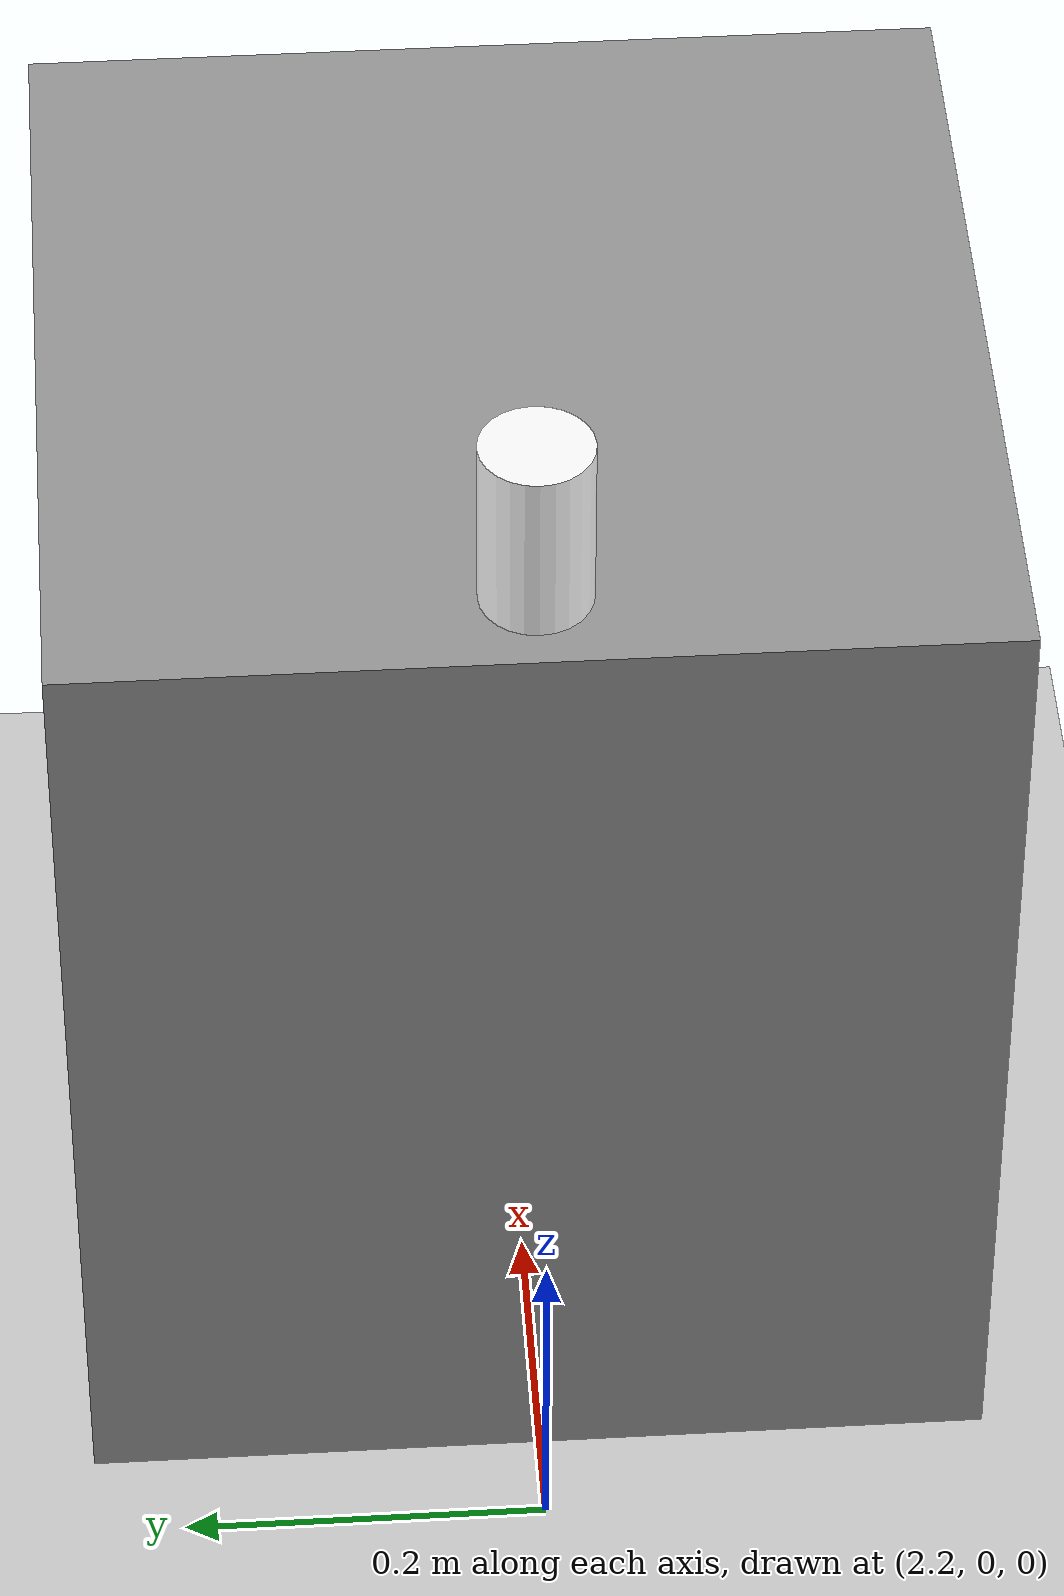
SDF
<?xml version="1.0"?>
<sdf version="1.4">
  <world name="default">
    <!-- A ground plane -->
    <include>
      <uri>model://ground_plane</uri>
    </include>
    <!-- A global light source -->
    <include>
      <uri>model://sun</uri>
    </include>
    <physics type="ode">
      <gravity>0.000000 0.000000 -9.810000</gravity>
      <ode>
        <solver>
          <type>quick</type>
          <iters>100</iters>
          <precon_iters>0</precon_iters>
          <sor>1.000000</sor>
        </solver>
        <constraints>
          <cfm>0.000000</cfm>
          <erp>0.500000</erp>
          <contact_max_correcting_vel>
          1000.000000</contact_max_correcting_vel>
          <contact_surface_layer>0.00000</contact_surface_layer>
        </constraints>
      </ode>
    </physics>
    <model name='static_box'>
      <link name='link'>
        <inertial>
          <mass>297.42</mass>
          <inertia>
            <ixx>15.4091</ixx>
            <ixy>0</ixy>
            <ixz>0</ixz>
            <iyy>14.9349</iyy>
            <iyz>0</iyz>
            <izz>12.1903</izz>
          </inertia>
          <pose frame=''>0 0 0 0 -0 0</pose>
        </inertial>
        <self_collide>0</self_collide>
        <enable_wind>0</enable_wind>
        <kinematic>0</kinematic>
        <pose frame=''>0 0 0 -0 -0 -0</pose>
        <gravity>1</gravity>
        <visual name='visual'>
          <geometry>
            <box>
              <size>0.5 0.5 0.6</size>
            </box>
          </geometry>
          <material>
            <script>
              <name>Gazebo/Grey</name>
              <uri>
              file://media/materials/scripts/gazebo.material</uri>
            </script>
            <shader type='vertex'>
              <normal_map>__default__</normal_map>
            </shader>
          </material>
          <pose frame=''>0 0 0 0 -0 0</pose>
          <transparency>0</transparency>
          <cast_shadows>1</cast_shadows>
        </visual>
        <collision name='collision'>
          <laser_retro>0</laser_retro>
          <max_contacts>10</max_contacts>
          <pose frame=''>0 0 0 0 -0 0</pose>
          <geometry>
            <box>
              <size>0.5 0.5 0.6</size>
            </box>
          </geometry>
          <surface>
            <friction>
              <ode>
                <mu>1</mu>
                <mu2>1</mu2>
                <fdir1>0 0 0</fdir1>
                <slip1>0</slip1>
                <slip2>0</slip2>
              </ode>
              <torsional>
                <coefficient>1</coefficient>
                <patch_radius>0</patch_radius>
                <surface_radius>0</surface_radius>
                <use_patch_radius>1</use_patch_radius>
                <ode>
                  <slip>0</slip>
                </ode>
              </torsional>
            </friction>
            <bounce>
              <restitution_coefficient>0</restitution_coefficient>
              <threshold>1e+06</threshold>
            </bounce>
            <contact>
              <collide_without_contact>0</collide_without_contact>
              <collide_without_contact_bitmask>
              1</collide_without_contact_bitmask>
              <collide_bitmask>1</collide_bitmask>
              <ode>
                <soft_cfm>0</soft_cfm>
                <soft_erp>0.2</soft_erp>
                <kp>1e+13</kp>
                <kd>1</kd>
                <max_vel>0.01</max_vel>
                <min_depth>0</min_depth>
              </ode>
              <bullet>
                <split_impulse>1</split_impulse>
                <split_impulse_penetration_threshold>
                -0.01</split_impulse_penetration_threshold>
                <soft_cfm>0</soft_cfm>
                <soft_erp>0.2</soft_erp>
                <kp>1e+13</kp>
                <kd>1</kd>
              </bullet>
            </contact>
          </surface>
        </collision>
      </link>
      <static>1</static>
      <allow_auto_disable>1</allow_auto_disable>
      <pose frame=''>2.5 0 0.3 0 -0 0</pose>
    </model>
    <model name='object'>
      <link name='obj_body'>
        <pose frame=''>2.3 0 0.64 0 -0 0</pose>
        <inertial>
          <mass>0.3</mass>
          <inertia>
            <ixx>0.00058</ixx>
            <ixy>0</ixy>
            <ixz>0</ixz>
            <iyy>0.00058</iyy>
            <iyz>0</iyz>
            <izz>0.00019</izz>
          </inertia>
          <pose frame=''>0 0 0 0 -0 0</pose>
        </inertial>
        <self_collide>0</self_collide>
        <enable_wind>1</enable_wind>
        <kinematic>0</kinematic>
        <gravity>1</gravity>
        <visual name='visual'>
          <geometry>
            <cylinder>
              <radius>0.03</radius>
              <length>0.12</length>
            </cylinder>
          </geometry>
          <material>
            <script>
              <uri>model://beer/materials/scripts</uri>
              <uri>model://beer/materials/textures</uri>
              <name>Beer/Diffuse</name>
            </script>
            <shader type='vertex'>
              <normal_map>__default__</normal_map>
            </shader>
            <ambient>1 1 1 1</ambient>
            <diffuse>1 1 1 1</diffuse>
            <specular>0 0 0 1</specular>
            <emissive>0 0 0 1</emissive>
          </material>
          <pose frame=''>0 0 0 0 -0 0</pose>
          <transparency>0</transparency>
          <cast_shadows>1</cast_shadows>
        </visual>
        <collision name='collision'>
          <laser_retro>0</laser_retro>
          <max_contacts>10</max_contacts>
          <pose frame=''>0 0 0 0 -0 0</pose>
          <geometry>
            <cylinder>
              <radius>0.03</radius>
              <length>0.12</length>
            </cylinder>
          </geometry>
          <surface>
            <friction>
              <ode>
                <mu>.6</mu>
                <mu2>.6</mu2>
                <fdir1>0 0 0</fdir1>
                <slip1>0</slip1>
                <slip2>0</slip2>
              </ode>
              <torsional>
                <coefficient>1</coefficient>
                <patch_radius>0</patch_radius>
                <surface_radius>0</surface_radius>
                <use_patch_radius>1</use_patch_radius>
                <ode>
                  <slip>0</slip>
                </ode>
              </torsional>
            </friction>
            <bounce>
              <restitution_coefficient>0</restitution_coefficient>
              <threshold>1e+06</threshold>
            </bounce>
            <contact>
              <collide_without_contact>0</collide_without_contact>
              <collide_without_contact_bitmask>
              1</collide_without_contact_bitmask>
              <collide_bitmask>1</collide_bitmask>
              <ode>
                <soft_cfm>0</soft_cfm>
                <soft_erp>0.2</soft_erp>
                <kp>1e+13</kp>
                <kd>100</kd>
                <max_vel>0.1</max_vel>
                <min_depth>0</min_depth>
              </ode>
              <bullet>
                <split_impulse>1</split_impulse>
                <split_impulse_penetration_threshold>
                -0.01</split_impulse_penetration_threshold>
                <soft_cfm>0</soft_cfm>
                <soft_erp>0.2</soft_erp>
                <kp>1e+13</kp>
                <kd>1</kd>
              </bullet>
            </contact>
          </surface>
        </collision>
      </link>
      <static>0</static>
      <allow_auto_disable>1</allow_auto_disable>
      <plugin name="r2_sensor" filename="libr2_sensor.so">
        <robotNamespace>/psudo_sensor/</robotNamespace>
      </plugin>
    </model>
  </world>
</sdf>
